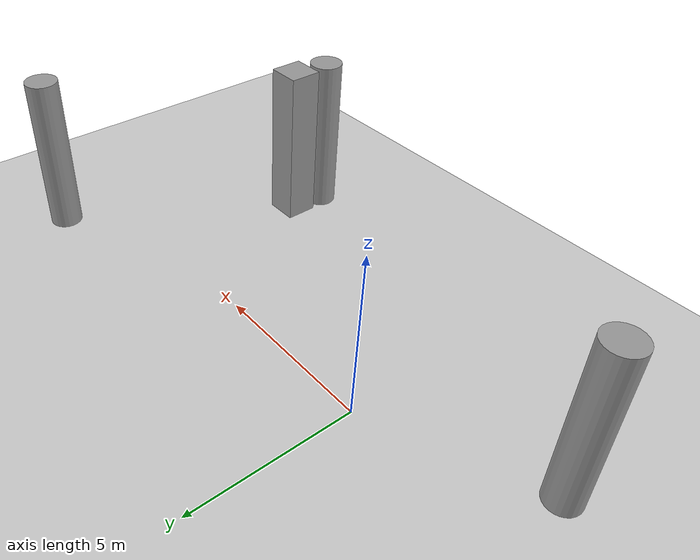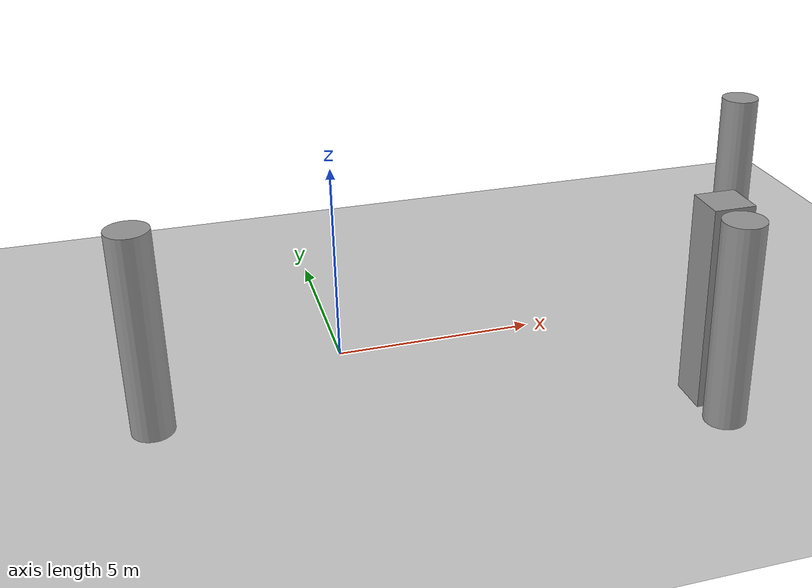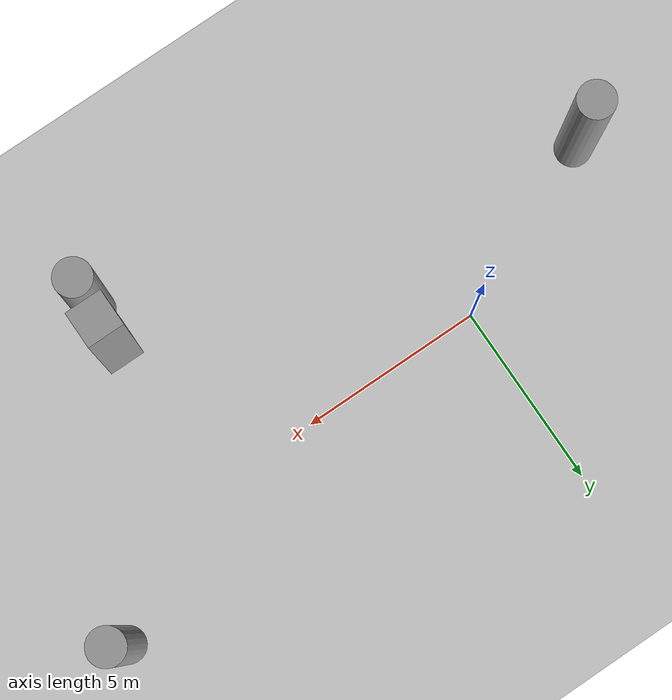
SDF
<sdf version="1.6">
 <world name="default">
  <model name="ground_plane">
   <static>1</static>
   <link name="link">
    <collision name="collision">
     <geometry><plane><normal>0 0 1</normal><size>100 100</size></plane></geometry>
     <surface><friction><ode><mu>100</mu><mu2>50</mu2></ode></friction></surface>
    </collision>
    <visual name="visual">
     <cast_shadows>0</cast_shadows>
     <geometry><plane><normal>0 0 1</normal><size>100 100</size></plane></geometry>
     <material>
      <script><uri>file://media/materials/scripts/gazebo.material</uri><name>Gazebo/Grey</name></script>
     </material>
    </visual>
   </link>
  </model>
  <model name="gas_station">
   <link name="link_1">
    <inertial>
     <mass>1</mass>
     <inertia><ixx>0.145833</ixx><ixy>0</ixy><ixz>0</ixz><iyy>0.145833</iyy><iyz>0</iyz><izz>0.125</izz></inertia>
    </inertial>
    <pose>-10.5227 0.411147 0 0 -0 0</pose>
    <visual name="visual">
     <geometry><cylinder><radius>0.5</radius><length>5</length></cylinder></geometry>
     <material>
      <lighting>1</lighting>
      <script><uri>file://media/materials/scripts/gazebo.material</uri><name>Gazebo/Grey</name></script>
      <shader type="vertex"><normal_map>__default__</normal_map></shader>
      <ambient>0.3 0.3 0.3 1</ambient>
      <diffuse>0.7 0.7 0.7 1</diffuse>
      <specular>0.01 0.01 0.01 1</specular>
      <emissive>0 0 0 1</emissive>
     </material>
    </visual>
    <collision name="collision">
     <geometry><cylinder><radius>0.5</radius><length>5</length></cylinder></geometry>
     <surface>
      <friction>
       <ode><mu>1</mu><mu2>1</mu2><fdir1>0 0 0</fdir1><slip1>0</slip1><slip2>0</slip2></ode>
       <torsional>
        <coefficient>1</coefficient>
        <patch_radius>0</patch_radius>
        <surface_radius>0</surface_radius>
        <use_patch_radius>1</use_patch_radius>
        <ode><slip>0</slip></ode>
       </torsional>
      </friction>
      <bounce><restitution_coefficient>0</restitution_coefficient><threshold>1e+06</threshold></bounce>
      <contact>
       <collide_without_contact>0</collide_without_contact>
       <collide_without_contact_bitmask>1</collide_without_contact_bitmask>
       <collide_bitmask>1</collide_bitmask>
       <ode>
        <soft_cfm>0</soft_cfm>
        <soft_erp>0.2</soft_erp>
        <kp>1e+13</kp>
        <kd>1</kd>
        <max_vel>0.01</max_vel>
        <min_depth>0</min_depth>
       </ode>
       <bullet>
        <split_impulse>1</split_impulse>
        <split_impulse_penetration_threshold>-0.01</split_impulse_penetration_threshold>
        <soft_cfm>0</soft_cfm>
        <soft_erp>0.2</soft_erp>
        <kp>1e+13</kp>
        <kd>1</kd>
       </bullet>
      </contact>
     </surface>
    </collision>
   </link>
   <link name="link_1_clone">
    <inertial>
     <mass>1</mass>
     <inertia><ixx>0.145833</ixx><ixy>0</ixy><ixz>0</ixz><iyy>0.145833</iyy><iyz>0</iyz><izz>0.125</izz></inertia>
    </inertial>
    <pose>6.20822 4.5661 0 0 -0 0</pose>
    <visual name="visual">
     <geometry><cylinder><radius>0.5</radius><length>5</length></cylinder></geometry>
     <material>
      <lighting>1</lighting>
      <script><uri>file://media/materials/scripts/gazebo.material</uri><name>Gazebo/Grey</name></script>
      <shader type="vertex"><normal_map>__default__</normal_map></shader>
      <ambient>0.3 0.3 0.3 1</ambient>
      <diffuse>0.7 0.7 0.7 1</diffuse>
      <specular>0.01 0.01 0.01 1</specular>
      <emissive>0 0 0 1</emissive>
     </material>
    </visual>
    <collision name="collision">
     <geometry><cylinder><radius>0.5</radius><length>5</length></cylinder></geometry>
     <surface>
      <friction>
       <ode><mu>1</mu><mu2>1</mu2><fdir1>0 0 0</fdir1><slip1>0</slip1><slip2>0</slip2></ode>
       <torsional>
        <coefficient>1</coefficient>
        <patch_radius>0</patch_radius>
        <surface_radius>0</surface_radius>
        <use_patch_radius>1</use_patch_radius>
        <ode><slip>0</slip></ode>
       </torsional>
      </friction>
      <bounce><restitution_coefficient>0</restitution_coefficient><threshold>1e+06</threshold></bounce>
      <contact>
       <collide_without_contact>0</collide_without_contact>
       <collide_without_contact_bitmask>1</collide_without_contact_bitmask>
       <collide_bitmask>1</collide_bitmask>
       <ode>
        <soft_cfm>0</soft_cfm>
        <soft_erp>0.2</soft_erp>
        <kp>1e+13</kp>
        <kd>1</kd>
        <max_vel>0.01</max_vel>
        <min_depth>0</min_depth>
       </ode>
       <bullet>
        <split_impulse>1</split_impulse>
        <split_impulse_penetration_threshold>-0.01</split_impulse_penetration_threshold>
        <soft_cfm>0</soft_cfm>
        <soft_erp>0.2</soft_erp>
        <kp>1e+13</kp>
        <kd>1</kd>
       </bullet>
      </contact>
     </surface>
    </collision>
   </link>
   <link name="link_1_clone_0">
    <inertial>
     <mass>1</mass>
     <inertia><ixx>0.145833</ixx><ixy>0</ixy><ixz>0</ixz><iyy>0.145833</iyy><iyz>0</iyz><izz>0.125</izz></inertia>
    </inertial>
    <pose>2.09735 -3.04184 0 0 -0 0</pose>
    <visual name="visual">
     <geometry><cylinder><radius>0.5</radius><length>5</length></cylinder></geometry>
     <material>
      <lighting>1</lighting>
      <script><uri>file://media/materials/scripts/gazebo.material</uri><name>Gazebo/Grey</name></script>
      <shader type="vertex"><normal_map>__default__</normal_map></shader>
      <ambient>0.3 0.3 0.3 1</ambient>
      <diffuse>0.7 0.7 0.7 1</diffuse>
      <specular>0.01 0.01 0.01 1</specular>
      <emissive>0 0 0 1</emissive>
     </material>
    </visual>
    <collision name="collision">
     <geometry><cylinder><radius>0.5</radius><length>5</length></cylinder></geometry>
     <surface>
      <friction>
       <ode><mu>1</mu><mu2>1</mu2><fdir1>0 0 0</fdir1><slip1>0</slip1><slip2>0</slip2></ode>
       <torsional>
        <coefficient>1</coefficient>
        <patch_radius>0</patch_radius>
        <surface_radius>0</surface_radius>
        <use_patch_radius>1</use_patch_radius>
        <ode><slip>0</slip></ode>
       </torsional>
      </friction>
      <bounce><restitution_coefficient>0</restitution_coefficient><threshold>1e+06</threshold></bounce>
      <contact>
       <collide_without_contact>0</collide_without_contact>
       <collide_without_contact_bitmask>1</collide_without_contact_bitmask>
       <collide_bitmask>1</collide_bitmask>
       <ode>
        <soft_cfm>0</soft_cfm>
        <soft_erp>0.2</soft_erp>
        <kp>1e+13</kp>
        <kd>1</kd>
        <max_vel>0.01</max_vel>
        <min_depth>0</min_depth>
       </ode>
       <bullet>
        <split_impulse>1</split_impulse>
        <split_impulse_penetration_threshold>-0.01</split_impulse_penetration_threshold>
        <soft_cfm>0</soft_cfm>
        <soft_erp>0.2</soft_erp>
        <kp>1e+13</kp>
        <kd>1</kd>
       </bullet>
      </contact>
     </surface>
    </collision>
   </link>
   <link name="link_2">
    <inertial>
     <mass>1</mass>
     <inertia>
      <ixx>0.166667</ixx>
      <ixy>0</ixy>
      <ixz>0</ixz>
      <iyy>0.166667</iyy>
      <iyz>0</iyz>
      <izz>0.166667</izz>
     </inertia>
    </inertial>
    <pose>2.21706 -1.93541 0 0 -0 0</pose>
    <visual name="visual">
     <geometry><box><size>1 1 5</size></box></geometry>
     <material>
      <lighting>1</lighting>
      <script><uri>file://media/materials/scripts/gazebo.material</uri><name>Gazebo/Grey</name></script>
      <shader type="vertex"><normal_map>__default__</normal_map></shader>
      <ambient>0.3 0.3 0.3 1</ambient>
      <diffuse>0.7 0.7 0.7 1</diffuse>
      <specular>0.01 0.01 0.01 1</specular>
      <emissive>0 0 0 1</emissive>
     </material>
    </visual>
    <collision name="collision">
     <geometry><box><size>1 1 5</size></box></geometry>
     <surface>
      <friction>
       <ode><mu>1</mu><mu2>1</mu2><fdir1>0 0 0</fdir1><slip1>0</slip1><slip2>0</slip2></ode>
       <torsional>
        <coefficient>1</coefficient>
        <patch_radius>0</patch_radius>
        <surface_radius>0</surface_radius>
        <use_patch_radius>1</use_patch_radius>
        <ode><slip>0</slip></ode>
       </torsional>
      </friction>
      <bounce><restitution_coefficient>0</restitution_coefficient><threshold>1e+06</threshold></bounce>
      <contact>
       <collide_without_contact>0</collide_without_contact>
       <collide_without_contact_bitmask>1</collide_without_contact_bitmask>
       <collide_bitmask>1</collide_bitmask>
       <ode>
        <soft_cfm>0</soft_cfm>
        <soft_erp>0.2</soft_erp>
        <kp>1e+13</kp>
        <kd>1</kd>
        <max_vel>0.01</max_vel>
        <min_depth>0</min_depth>
       </ode>
       <bullet>
        <split_impulse>1</split_impulse>
        <split_impulse_penetration_threshold>-0.01</split_impulse_penetration_threshold>
        <soft_cfm>0</soft_cfm>
        <soft_erp>0.2</soft_erp>
        <kp>1e+13</kp>
        <kd>1</kd>
       </bullet>
      </contact>
     </surface>
    </collision>
   </link>
   <static>0</static>
   <pose>5.78281 -2.54406 2.49999 0 -0 0.000315</pose>
  </model>
 </world>
</sdf>
